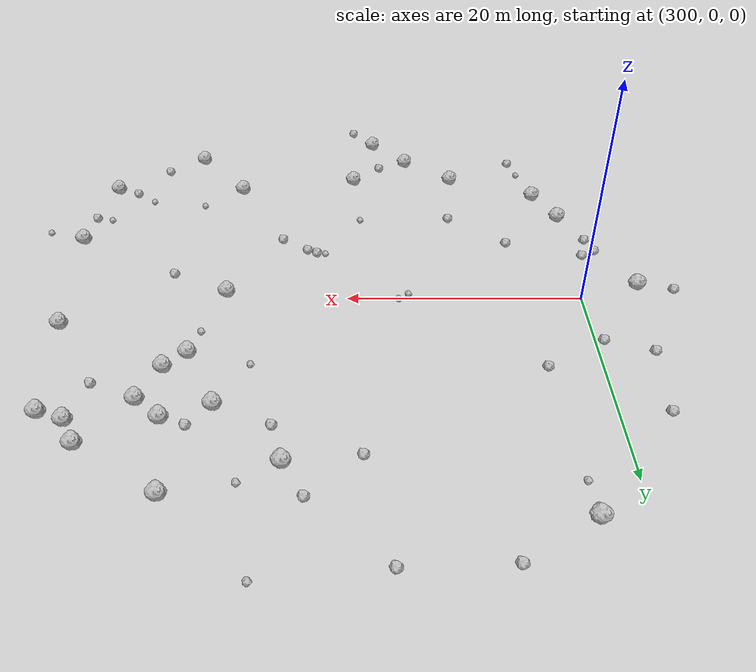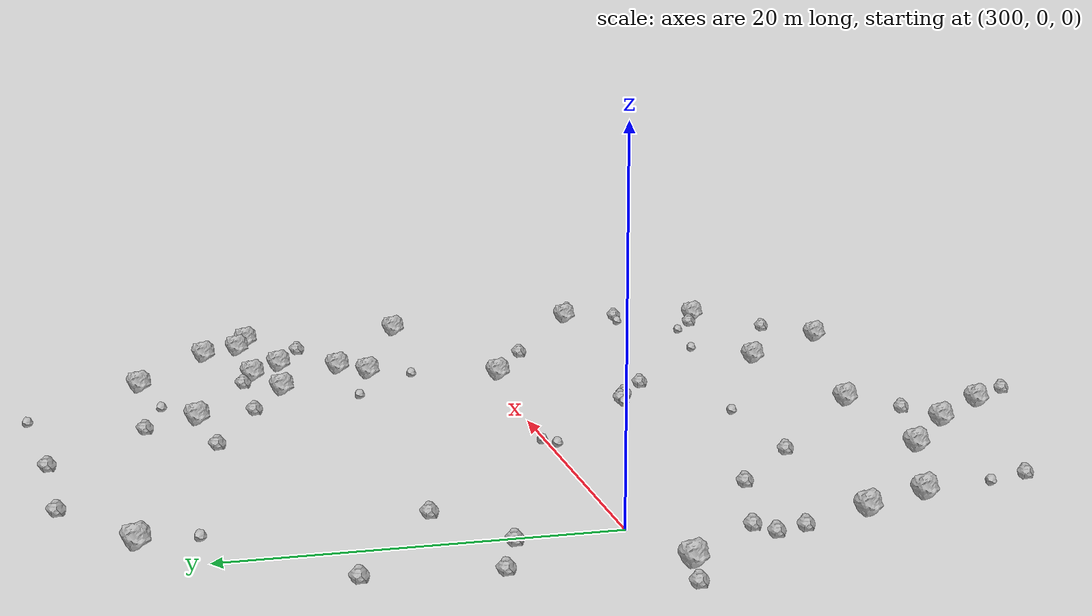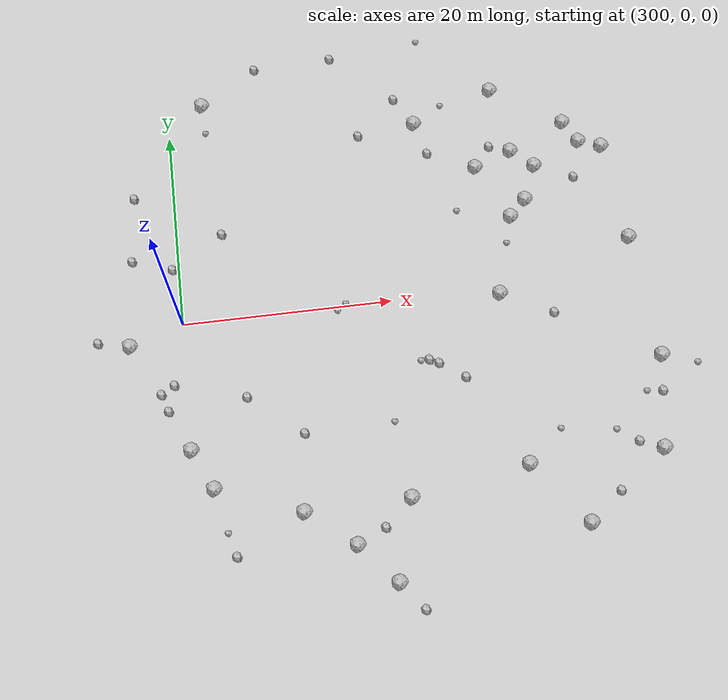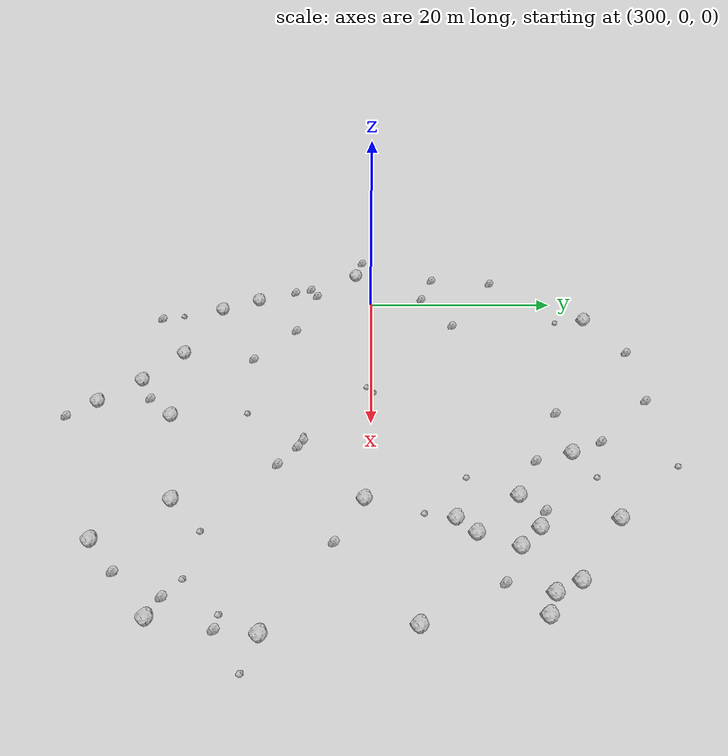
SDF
<sdf version="1.6">
 <world name="default">
  <include><uri>model://sun</uri></include>
  <model name="rock1_8_3">
   <include><uri>model://rock1</uri><pose>332.6760321799625 7.292617963301183 0.5 0 0 0</pose></include>
  </model>
  <model name="rock1_8_4">
   <include><uri>model://rock1</uri><pose>309.72776951896884 -19.604643657355513 0.5 0 0 0</pose></include>
  </model>
  <model name="rock1_8_5">
   <include><uri>model://rock1</uri><pose>324.52169456838703 18.60354794129674 0.5 0 0 0</pose></include>
  </model>
  <model name="rock1_8_6">
   <include><uri>model://rock1</uri><pose>317.507723068589 -26.984567158582998 0.5 0 0 0</pose></include>
  </model>
  <model name="rock1_8_7">
   <include><uri>model://rock1</uri><pose>333.7013790723656 14.422144398686115 0.5 0 0 0</pose></include>
  </model>
  <model name="rock1_8_8">
   <include><uri>model://rock1</uri><pose>334.3595326229894 8.966959501766155 0.5 0 0 0</pose></include>
  </model>
  <model name="rock1_8_9">
   <include><uri>model://rock1</uri><pose>335.82251313094736 12.522485376652703 0.5 0 0 0</pose></include>
  </model>
  <model name="rock1_8_10">
   <include><uri>model://rock1</uri><pose>342.7925516674514 13.887378159635958 0.5 0 0 0</pose></include>
  </model>
  <model name="rock1_8_11">
   <include><uri>model://rock1</uri><pose>335.3897613737809 -23.716203529545368 0.5 0 0 0</pose></include>
  </model>
  <model name="rock1_8_12">
   <include><uri>model://rock1</uri><pose>329.9818646995443 13.030527605653674 0.5 0 0 0</pose></include>
  </model>
  <model name="rock1_8_13">
   <include><uri>model://rock1</uri><pose>314.1943864428129 -23.17061067142458 0.5 0 0 0</pose></include>
  </model>
  <model name="rock1_8_14">
   <include><uri>model://rock1</uri><pose>299.95197751357745 -12.605959150986838 0.5 0 0 0</pose></include>
  </model>
  <model name="rock1_8_15">
   <include><uri>model://rock1</uri><pose>319.5574690485303 -19.45245138018815 0.5 0 0 0</pose></include>
  </model>
  <model name="rock1_8_16">
   <include><uri>model://rock1</uri><pose>294.90788294157204 -1.7819820693727024 0.5 0 0 0</pose></include>
  </model>
  <model name="rock1_8_17">
   <include><uri>model://rock1</uri><pose>301.7772224926982 -16.49909453433395 0.5 0 0 0</pose></include>
  </model>
  <model name="rock1_8_18">
   <include><uri>model://rock1</uri><pose>343.7673433152284 3.726178473173846 0.5 0 0 0</pose></include>
  </model>
  <model name="rock1_8_19">
   <include><uri>model://rock1</uri><pose>340.6177217617086 14.691625001365956 0.5 0 0 0</pose></include>
  </model>
  <model name="rock1_8_20">
   <include><uri>model://rock1</uri><pose>344.69479027939326 -8.642651318262956 0.5 0 0 0</pose></include>
  </model>
  <model name="rock1_8_21">
   <include><uri>model://rock1</uri><pose>303.52015991117185 23.22474025049631 0.5 0 0 0</pose></include>
  </model>
  <model name="rock1_8_22">
   <include><uri>model://rock1</uri><pose>332.64052387867116 21.469281169706328 0.5 0 0 0</pose></include>
  </model>
  <model name="rock1_8_23">
   <include><uri>model://rock1</uri><pose>343.24846401397105 -17.609481290104405 0.5 0 0 0</pose></include>
  </model>
  <model name="rock1_8_24">
   <include><uri>model://rock1</uri><pose>339.3784167242029 16.974724362782695 0.5 0 0 0</pose></include>
  </model>
  <model name="rock1_8_25">
   <include><uri>model://rock1</uri><pose>330.45229837001136 -0.6082257276409777 0.5 0 0 0</pose></include>
  </model>
  <model name="rock1_8_26">
   <include><uri>model://rock1</uri><pose>330.69719139603524 -17.618319607560842 0.5 0 0 0</pose></include>
  </model>
  <model name="rock2_8_0">
   <include><uri>model://rock2</uri><pose>326.0514527022812 -8.570589897401234 0.3 0 0 0</pose></include>
  </model>
  <model name="rock2_8_1">
   <include><uri>model://rock2</uri><pose>298.1145911938098 -8.60297091463022 0.3 0 0 0</pose></include>
  </model>
  <model name="rock2_8_2">
   <include><uri>model://rock2</uri><pose>298.8090139537302 -6.104073458702935 0.3 0 0 0</pose></include>
  </model>
  <model name="rock2_8_3">
   <include><uri>model://rock2</uri><pose>297.540797773614 -6.876112706271485 0.3 0 0 0</pose></include>
  </model>
  <model name="rock2_8_4">
   <include><uri>model://rock2</uri><pose>295.56137792130687 6.982338774778178 0.3 0 0 0</pose></include>
  </model>
  <model name="rock2_8_5">
   <include><uri>model://rock2</uri><pose>316.8744245004107 27.162083672104934 0.3 0 0 0</pose></include>
  </model>
  <model name="rock2_8_6">
   <include><uri>model://rock2</uri><pose>335.30244063431866 -3.135143625907741 0.3 0 0 0</pose></include>
  </model>
  <model name="rock2_8_7">
   <include><uri>model://rock2</uri><pose>291.88965587048745 -1.0656469638966435 0.3 0 0 0</pose></include>
  </model>
  <model name="rock2_8_8">
   <include><uri>model://rock2</uri><pose>299.3844154724483 5.679934710758644 0.3 0 0 0</pose></include>
  </model>
  <model name="rock2_8_9">
   <include><uri>model://rock2</uri><pose>309.09718834492367 26.824060106313574 0.3 0 0 0</pose></include>
  </model>
  <model name="rock2_8_10">
   <include><uri>model://rock2</uri><pose>296.13794218137537 13.681860261980987 0.3 0 0 0</pose></include>
  </model>
  <model name="rock2_8_11">
   <include><uri>model://rock2</uri><pose>322.8125608500828 21.668914765339423 0.3 0 0 0</pose></include>
  </model>
  <model name="rock2_8_12">
   <include><uri>model://rock2</uri><pose>341.0812296932029 -16.677302599476164 0.3 0 0 0</pose></include>
  </model>
  <model name="rock2_8_13">
   <include><uri>model://rock2</uri><pose>338.58839412539777 -21.099637607497392 0.3 0 0 0</pose></include>
  </model>
  <model name="rock2_8_14">
   <include><uri>model://rock2</uri><pose>323.7140076702961 -6.8774076878121235 0.3 0 0 0</pose></include>
  </model>
  <model name="rock2_8_15">
   <include><uri>model://rock2</uri><pose>310.47397676098177 -12.219634447050069 0.3 0 0 0</pose></include>
  </model>
  <model name="rock2_8_16">
   <include><uri>model://rock2</uri><pose>339.4974592524167 10.883233006390988 0.3 0 0 0</pose></include>
  </model>
  <model name="rock2_8_17">
   <include><uri>model://rock2</uri><pose>322.8557641374806 -6.433868205153509 0.3 0 0 0</pose></include>
  </model>
  <model name="rock2_8_18">
   <include><uri>model://rock2</uri><pose>303.31832334899286 -22.947392036077567 0.3 0 0 0</pose></include>
  </model>
  <model name="rock2_8_19">
   <include><uri>model://rock2</uri><pose>331.6506982593535 15.20885565865948 0.3 0 0 0</pose></include>
  </model>
  <model name="rock2_8_20">
   <include><uri>model://rock2</uri><pose>304.3888879427161 8.843533241830144 0.3 0 0 0</pose></include>
  </model>
  <model name="rock2_8_21">
   <include><uri>model://rock2</uri><pose>325.42273138737744 15.187706846122992 0.3 0 0 0</pose></include>
  </model>
  <model name="rock2_8_22">
   <include><uri>model://rock2</uri><pose>318.79896804803985 17.964103330578844 0.3 0 0 0</pose></include>
  </model>
  <model name="rock2_8_23">
   <include><uri>model://rock2</uri><pose>316.875974979272 -21.888134958379833 0.3 0 0 0</pose></include>
  </model>
  <model name="rock2_8_24">
   <include><uri>model://rock2</uri><pose>305.4605519815133 -8.077956218522434 0.3 0 0 0</pose></include>
  </model>
  <model name="rock2_8_25">
   <include><uri>model://rock2</uri><pose>319.5153699919327 -29.634011856681 0.3 0 0 0</pose></include>
  </model>
  <model name="rock2_8_26">
   <include><uri>model://rock2</uri><pose>344.1602612974953 -12.13106949719873 0.3 0 0 0</pose></include>
  </model>
  <model name="rock3_8_0">
   <include><uri>model://rock3</uri><pose>339.20177417364664 -15.317605015596367 0.2 0 0 0</pose></include>
  </model>
  <model name="rock3_8_1">
   <include><uri>model://rock3</uri><pose>331.88609464508977 4.621399669923981 0.2 0 0 0</pose></include>
  </model>
  <model name="rock3_8_2">
   <include><uri>model://rock3</uri><pose>315.6151111774037 0.20386499734425456 0.2 0 0 0</pose></include>
  </model>
  <model name="rock3_8_3">
   <include><uri>model://rock3</uri><pose>327.410240817527 20.426257129427313 0.2 0 0 0</pose></include>
  </model>
  <model name="rock3_8_4">
   <include><uri>model://rock3</uri><pose>303.6319747168722 20.14904107131666 0.2 0 0 0</pose></include>
  </model>
  <model name="rock3_8_5">
   <include><uri>model://rock3</uri><pose>322.05061970898714 -6.431984402210052 0.2 0 0 0</pose></include>
  </model>
  <model name="rock3_8_6">
   <include><uri>model://rock3</uri><pose>347.95468645809495 -9.743548351835845 0.2 0 0 0</pose></include>
  </model>
  <model name="rock3_8_7">
   <include><uri>model://rock3</uri><pose>334.08750367106137 -14.597756953848712 0.2 0 0 0</pose></include>
  </model>
  <model name="rock3_8_8">
   <include><uri>model://rock3</uri><pose>318.8671764536244 -12.089110056919232 0.2 0 0 0</pose></include>
  </model>
  <model name="rock3_8_9">
   <include><uri>model://rock3</uri><pose>342.6737831865383 -11.9741599906197 0.2 0 0 0</pose></include>
  </model>
  <model name="rock3_8_10">
   <include><uri>model://rock3</uri><pose>325.9232309422301 28.121287719628683 0.2 0 0 0</pose></include>
  </model>
  <model name="rock3_8_11">
   <include><uri>model://rock3</uri><pose>327.5085047434874 8.59067431096318 0.2 0 0 0</pose></include>
  </model>
  <model name="rock3_8_12">
   <include><uri>model://rock3</uri><pose>314.7761388516899 -0.4521822312215491 0.2 0 0 0</pose></include>
  </model>
  <model name="rock3_8_13">
   <include><uri>model://rock3</uri><pose>302.67107091656425 -20.694157070234127 0.2 0 0 0</pose></include>
  </model>
 </world>
</sdf>
